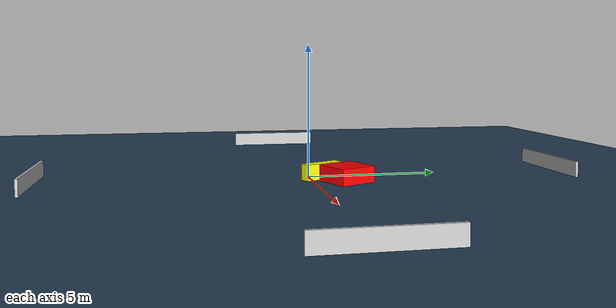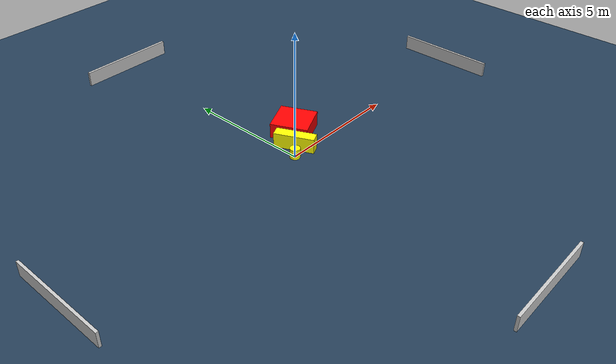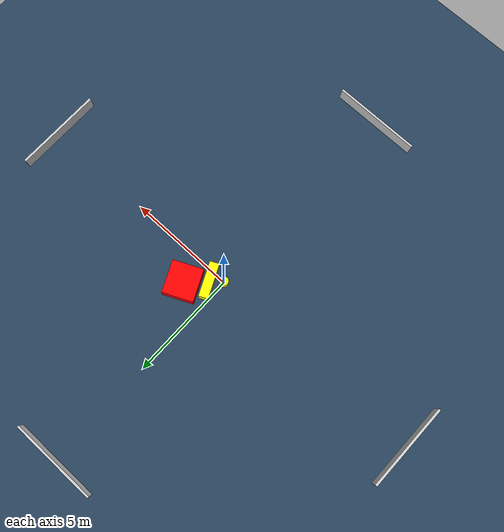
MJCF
<?xml version="1.0" ?>
<mujoco model="generated_environment">
  <option timestep="0.01" integrator="RK4" cone="elliptic"/>
  <default>
    <geom density="1"/>
  </default>
  <asset>
    <texture builtin="gradient" height="3072" name="skybox" rgb1="0.3 0.5 0.7" rgb2="0 0 0" type="skybox" width="512"/>
    <texture builtin="checker" height="300" name="groundplane" rgb1="0.2 0.3 0.4" rgb2="0.1 0.2 0.3" type="2d" width="300"/>
    <material name="groundplane" reflectance="0.2" texrepeat="5 5" texture="groundplane"/>
  </asset>
  <worldbody>
    <light dir="0 0 -1" directional="true" pos="0 0 1.5"/>
    <geom condim="3" friction="0.5 0.005 0.001" material="groundplane" name="floor" pos="0 0 0" size="0 0 0.05" type="plane"/>
    <body name="walls">
      <geom name="wall_1" condim="4" pos="-10.0 0.0 0.3" rgba="0.800000011920929 0.800000011920929 0.800000011920929 1.0" size="0.05 2.0 0.3" type="box"/>
      <geom name="wall_2" condim="4" pos="10.0 0.0 0.3" rgba="0.800000011920929 0.800000011920929 0.800000011920929 1.0" size="0.05 2.0 0.3" type="box"/>
      <geom name="wall_3" condim="4" pos="0.0 -10.0 0.3" rgba="0.800000011920929 0.800000011920929 0.800000011920929 1.0" size="2.0 0.05 0.3" type="box"/>
      <geom name="wall_4" condim="4" pos="0.0 10.0 0.3" rgba="0.800000011920929 0.800000011920929 0.800000011920929 1.0" size="2.0 0.05 0.3" type="box"/>
    </body>
    <body name="robot">
      <joint name="joint_x" type="slide" pos="0 0 0" axis="1 0 0"/>
      <joint name="joint_y" type="slide" pos="0 0 0" axis="0 1 0"/>
      <geom name="robot" type="cylinder" pos="0.0 0.0 0.2" size="0.2 0.2 0.0" mass="5.0" friction="1.0 0.005 0.0001" condim="4" rgba="1.0 1.0 0.0 1.0"/>
    </body>
    <body name="obstacle_1_movable">
      <geom name="obstacle_1_movable" condim="4" pos="0.4716817927815836 0.42253344935027537 0.3" euler="0 0 25.132670219850596" friction="0.0 0.005 0.001" rgba="1.0 1.0 0.0 1.0" size="0.21176061596944937 0.7870526281700987 0.3" type="box" mass="0.1"/>
      <joint type="free"/>
    </body>
    <body name="obstacle_2_static">
      <geom name="obstacle_2_static" condim="4" pos="1.2545869802265122 1.1960222547762724 0.3" euler="0 0 24.943233491581047" friction="0.0 0.005 0.001" rgba="1.0 0.0 0.0 1.0" size="0.6965801707214896 0.7392484177589356 0.3" type="box"/>
    </body>
  </worldbody>
  <actuator>
    <motor name="actuator_x" joint="joint_x" gear="1" ctrlrange="-1 1"/>
    <motor name="actuator_y" joint="joint_y" gear="1" ctrlrange="-1 1"/>
  </actuator>
</mujoco>
